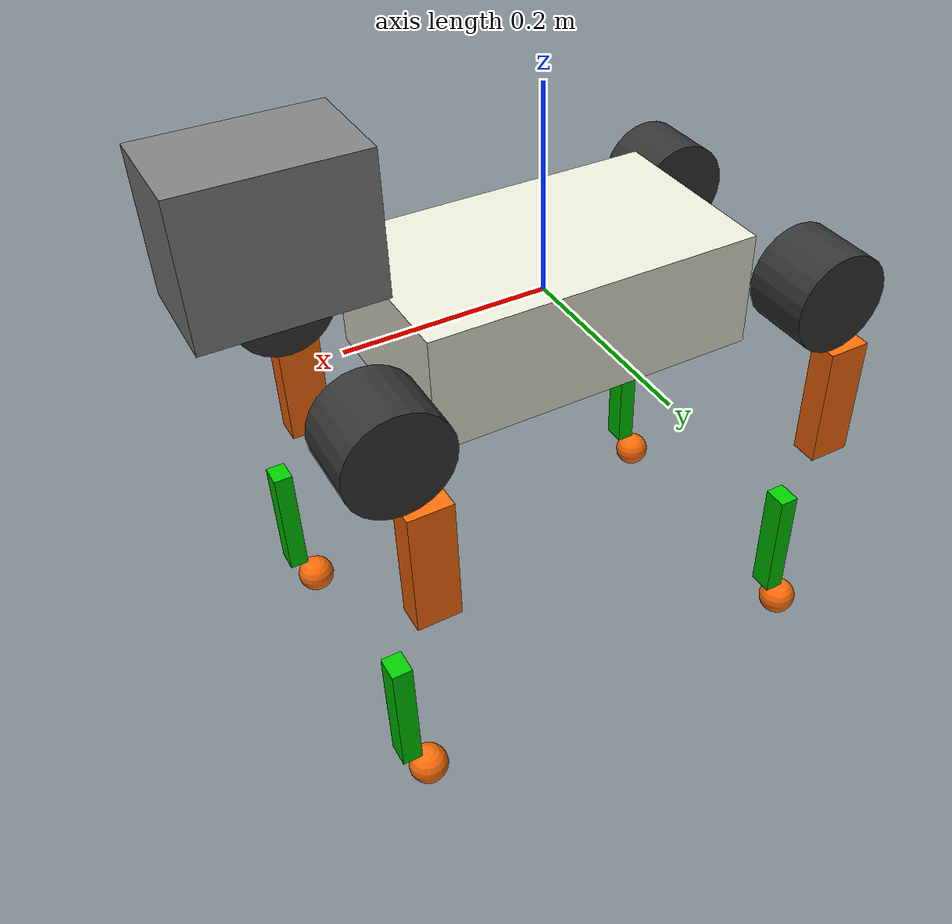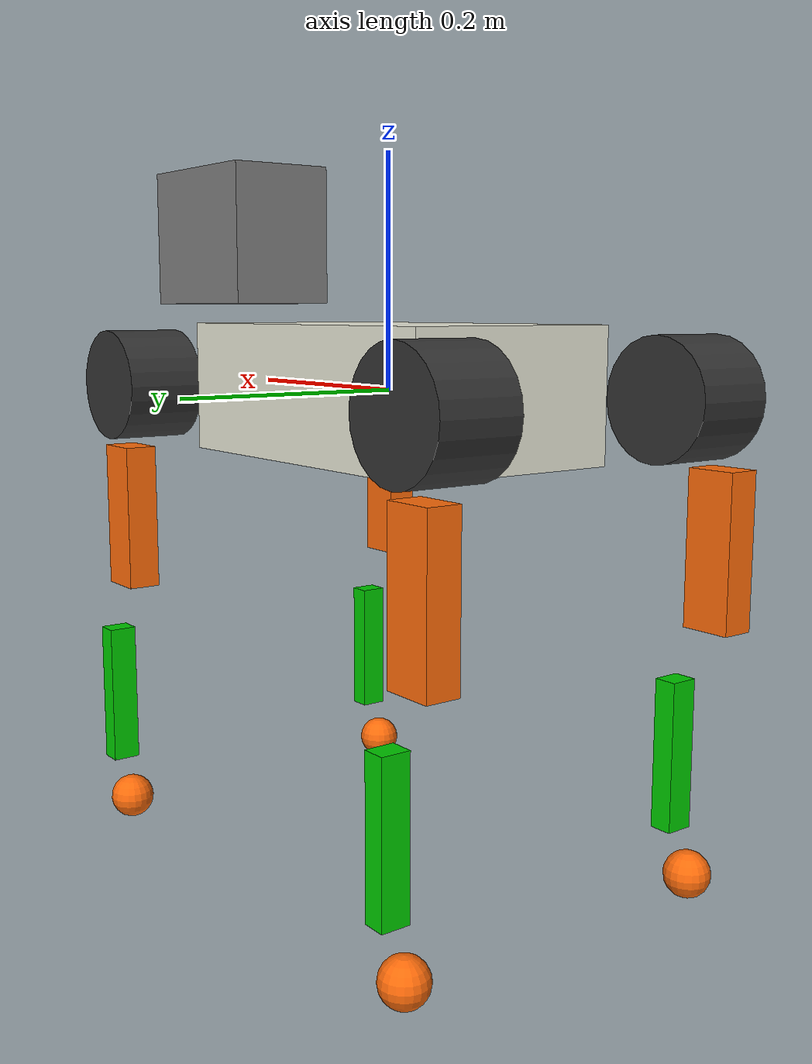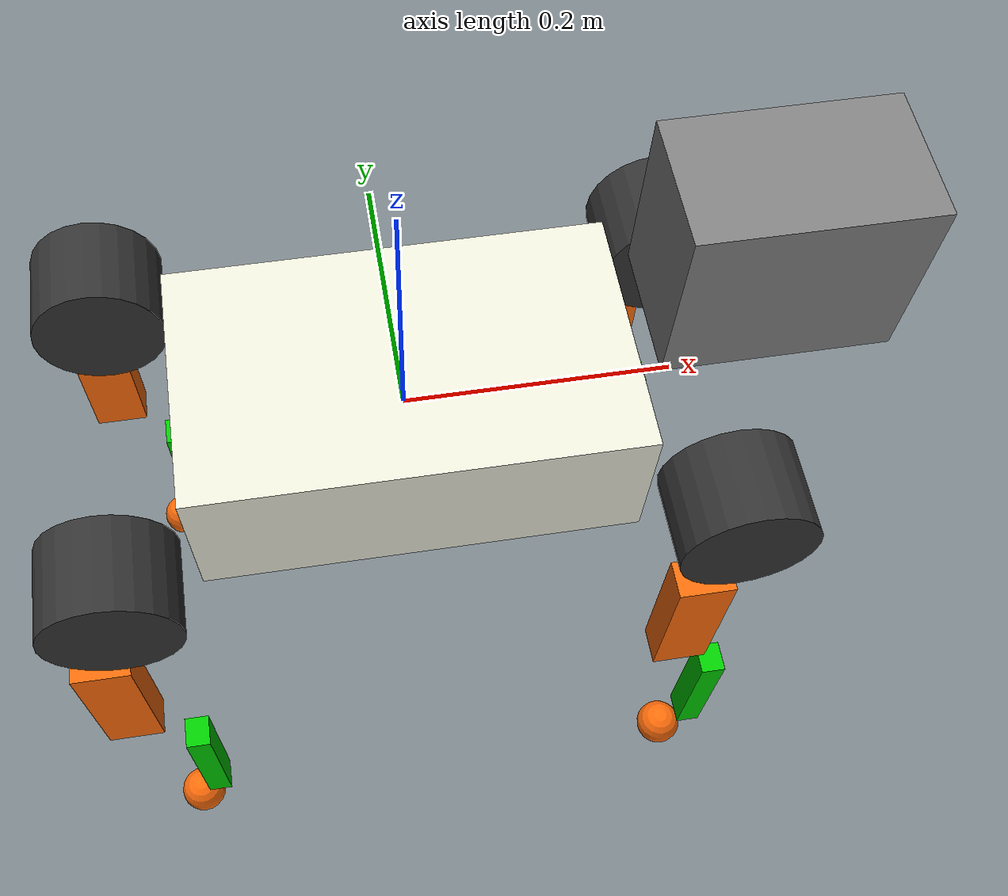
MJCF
<?xml version='1.0' encoding='utf-8'?>
<mujoco model="magicdog">
  <compiler angle="radian" boundmass="1e-06" boundinertia="1e-08" meshdir=".." />
  <worldbody>
    <body name="base">
      <inertial pos="0.0439446 0.00143849 0.0234468" quat="0.0154531 0.597864 0.00937491 0.801394" mass="7.14805" diaginertia="0.140598 0.136443 0.0327004" />
      <joint type="free" />
      <geom size="0.1635 0.097 0.057" type="box" rgba="0.913725 0.913725 0.847059 1" />
      <geom size="0.08 0.05 0.065" pos="0.25 0 0.14" type="box" />
      <body name="FR_hip" pos="0.220365 -0.0499879 0">
        <inertial pos="-0.0346729 0.00391302 0" quat="0.479256 0.479256 0.519917 0.519917" mass="0.359964" diaginertia="0.000479177 0.000469733 0.000100391" />
        <joint name="FR_hip_joint" pos="0 0 0" axis="1 0 0" range="-0.645772 0.785398" actuatorfrcrange="-25 25" />
        <geom size="0.05 0.035" pos="0 -0.075 0" quat="0.707107 0.707107 0 0" type="cylinder" rgba="0.2 0.2 0.2 1" />
        <body name="FR_thigh" pos="0 -0.099 0">
          <inertial pos="-0.00334736 0.0314366 -0.0320095" quat="0.986404 -0.155231 0.0349207 -0.0411304" mass="1.5726" diaginertia="0.00900833 0.00837662 0.00223511" />
          <joint name="FR_thigh_joint" pos="0 0 0" axis="0 1 0" range="-1.26536 3.62156" actuatorfrcrange="-25 25" />
          <geom size="0.0215 0.01425 0.065" pos="-0.02 0 -0.12" type="box" rgba="1 0.423529 0.0392157 1" />
          <body name="FR_calf" pos="0 0 -0.2">
            <inertial pos="0.0065118 -4.47154e-07 -0.0755547" quat="0.7071 0.0031623 0.0031623 0.7071" mass="0.251826" diaginertia="0.00181216 0.00178919 4.40557e-05" />
            <joint name="FR_calf_joint" pos="0 0 0" axis="0 1 0" range="-2.49582 -0.523599" actuatorfrcrange="-37.5 37.5" />
            <geom size="0.065 0.0125 0.01" pos="0.02 0 -0.1" quat="0.707107 0 0.707107 0" type="box" rgba="0 0.8 0 1" />
            <geom size="0.02" pos="0 0 -0.2" rgba="1 0.423529 0.0392157 1" />
          </body>
        </body>
      </body>
      <body name="FL_hip" pos="0.220365 0.0499879 0">
        <inertial pos="-0.0346729 -0.00391302 0" quat="0.519917 0.519917 0.479256 0.479256" mass="0.359964" diaginertia="0.000479177 0.000469733 0.000100391" />
        <joint name="FL_hip_joint" pos="0 0 0" axis="1 0 0" range="-0.785398 0.645772" actuatorfrcrange="-25 25" />
        <geom size="0.05 0.035" pos="0 0.075 0" quat="0.707107 0.707107 0 0" type="cylinder" rgba="0.2 0.2 0.2 1" />
        <body name="FL_thigh" pos="0 0.099 0">
          <inertial pos="-0.00334736 -0.0314366 -0.0320095" quat="0.986404 0.155231 0.0349207 0.0411304" mass="1.5726" diaginertia="0.00900833 0.00837662 0.00223511" />
          <joint name="FL_thigh_joint" pos="0 0 0" axis="0 1 0" range="-1.26536 3.62156" actuatorfrcrange="-25 25" />
          <geom size="0.0215 0.01425 0.065" pos="-0.02 0 -0.12" type="box" rgba="1 0.423529 0.0392157 1" />
          <body name="FL_calf" pos="0 0 -0.2">
            <inertial pos="0.0065118 -4.47154e-07 -0.0755547" quat="0.7071 0.0031623 0.0031623 0.7071" mass="0.251826" diaginertia="0.00181216 0.00178919 4.40557e-05" />
            <joint name="FL_calf_joint" pos="0 0 0" axis="0 1 0" range="-2.49582 -0.523599" actuatorfrcrange="-37.5 37.5" />
            <geom size="0.065 0.0125 0.01" pos="0.02 0 -0.1" quat="0.707107 0 0.707107 0" type="box" rgba="0 0.8 0 1" />
            <geom size="0.02" pos="0 0 -0.2" rgba="1 0.423529 0.0392157 1" />
          </body>
        </body>
      </body>
      <body name="RR_hip" pos="-0.220365 -0.0499879 0">
        <inertial pos="0.0346729 0.00391302 0" quat="0.519917 0.519917 0.479256 0.479256" mass="0.359964" diaginertia="0.000479177 0.000469733 0.000100391" />
        <joint name="RR_hip_joint" pos="0 0 0" axis="1 0 0" range="-0.645772 0.785398" actuatorfrcrange="-25 25" />
        <geom size="0.05 0.035" pos="0 -0.075 0" quat="0.707107 0.707107 0 0" type="cylinder" rgba="0.2 0.2 0.2 1" />
        <body name="RR_thigh" pos="0 -0.099 0">
          <inertial pos="-0.00334736 0.0314366 -0.0320095" quat="0.986404 -0.155231 0.0349207 -0.0411304" mass="1.5726" diaginertia="0.00900833 0.00837662 0.00223511" />
          <joint name="RR_thigh_joint" pos="0 0 0" axis="0 1 0" range="-1.26536 3.62156" actuatorfrcrange="-25 25" />
          <geom size="0.0215 0.01425 0.065" pos="-0.02 0 -0.12" type="box" rgba="1 0.423529 0.0392157 1" />
          <body name="RR_calf" pos="0 0 -0.2">
            <inertial pos="0.0065118 -4.47154e-07 -0.0755547" quat="0.7071 0.0031623 0.0031623 0.7071" mass="0.251826" diaginertia="0.00181216 0.00178919 4.40557e-05" />
            <joint name="RR_calf_joint" pos="0 0 0" axis="0 1 0" range="-2.49582 -0.523599" actuatorfrcrange="-37.5 37.5" />
            <geom size="0.065 0.0125 0.01" pos="0.02 0 -0.1" quat="0.707107 0 0.707107 0" type="box" rgba="0 0.8 0 1" />
            <geom size="0.02" pos="0 0 -0.2" rgba="1 0.423529 0.0392157 1" />
          </body>
        </body>
      </body>
      <body name="RL_hip" pos="-0.220365 0.0499879 0">
        <inertial pos="0.0346729 -0.00391302 0" quat="0.479256 0.479256 0.519917 0.519917" mass="0.359964" diaginertia="0.000479177 0.000469733 0.000100391" />
        <joint name="RL_hip_joint" pos="0 0 0" axis="1 0 0" range="-0.785398 0.645772" actuatorfrcrange="-25 25" />
        <geom size="0.05 0.035" pos="0 0.075 0" quat="0.707107 0.707107 0 0" type="cylinder" rgba="0.2 0.2 0.2 1" />
        <body name="RL_thigh" pos="0 0.099 0">
          <inertial pos="-0.00334736 -0.0314366 -0.0320095" quat="0.986404 0.155231 0.0349207 0.0411304" mass="1.5726" diaginertia="0.00900833 0.00837662 0.00223511" />
          <joint name="RL_thigh_joint" pos="0 0 0" axis="0 1 0" range="-1.26536 3.62156" actuatorfrcrange="-25 25" />
          <geom size="0.0215 0.01425 0.065" pos="-0.02 0 -0.12" type="box" rgba="1 0.423529 0.0392157 1" />
          <body name="RL_calf" pos="0 0 -0.2">
            <inertial pos="0.0065118 -4.47154e-07 -0.0755547" quat="0.7071 0.0031623 0.0031623 0.7071" mass="0.251826" diaginertia="0.00181216 0.00178919 4.40557e-05" />
            <joint name="RL_calf_joint" pos="0 0 0" axis="0 1 0" range="-2.49582 -0.523599" actuatorfrcrange="-37.5 37.5" />
            <geom size="0.065 0.0125 0.01" pos="0.02 0 -0.1" quat="0.707107 0 0.707107 0" type="box" rgba="0 0.8 0 1" />
            <geom size="0.02" pos="0 0 -0.2" rgba="1 0.423529 0.0392157 1" />
          </body>
        </body>
      </body>
    </body>
  </worldbody>
</mujoco>
